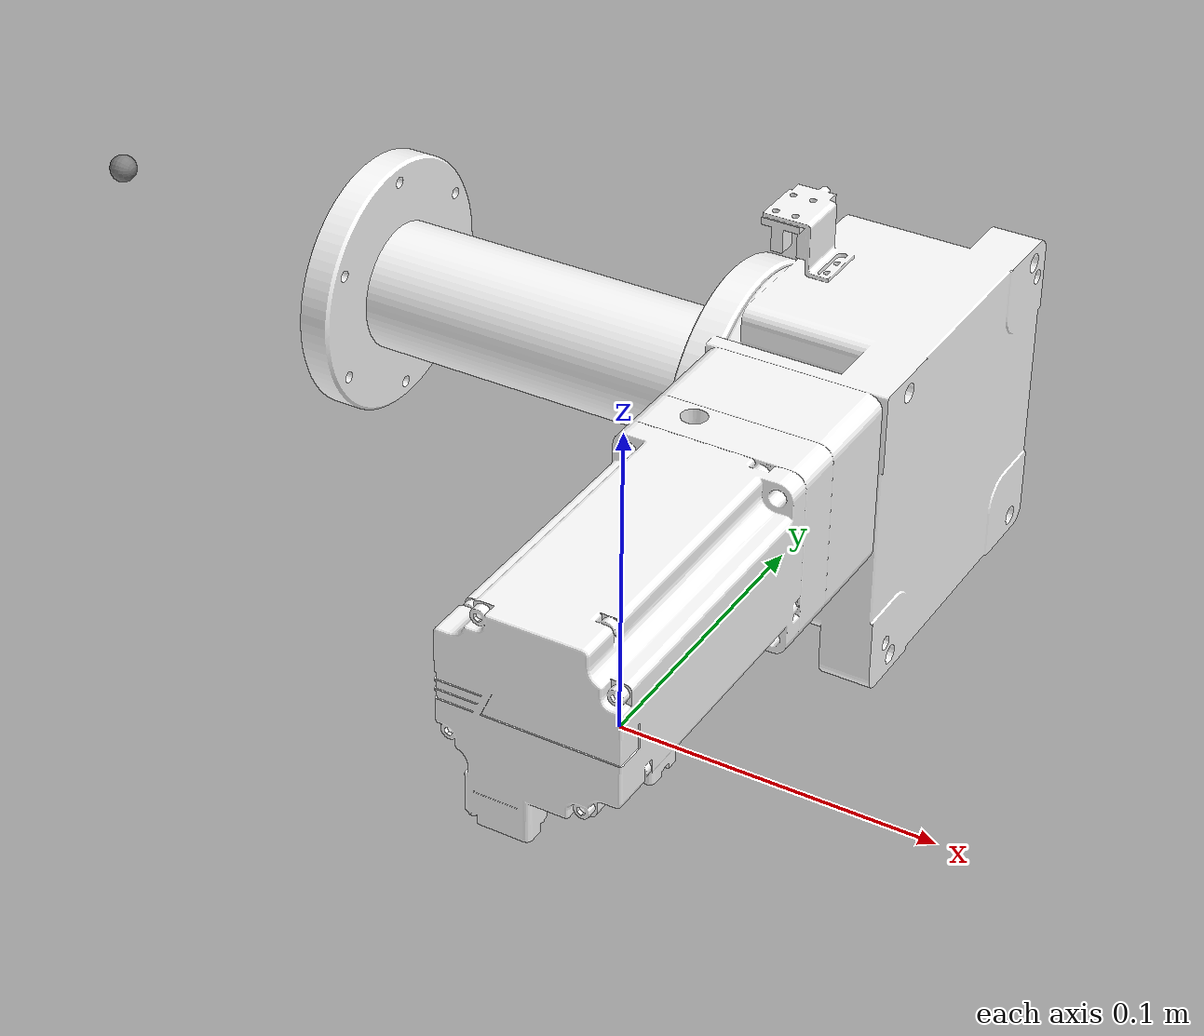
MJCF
<mujoco model="stage">
	<compiler angle="radian" strippath="true" autolimits="true" inertiafromgeom="true" />
	<include file="../common/default.xml" />
    <asset>
        <mesh name="stage_base" file="../assets/stage_base.stl" scale="0.001 0.001 0.001" />
        <mesh name="stage_axis" file="../assets/stage_axis.stl" scale="0.001 0.001 0.001" />
    </asset>
	<worldbody>

	<body name="stage/base">
		<geom name="stage/base" type="mesh" mesh="stage_base" pos="0 0 0" euler="0 0 0" class="visual"/>
		<inertial mass="10.1934626941949" pos="-0.006055673232456789 0.1156426328216132 0.01728651720170607" fullinertia="0.06643149011192773 0.01258380628891765 0.06300817000895997 0.0019355361989908156 -0.0002743789213502296 0.007765215958998828" />
		<body name="stage/axis" pos="0.0 0.15970000000001808 0.17609999999999487" euler="-1.5707963267948966 1.514612938024344e-28 5.777323064393413e-14">
			<joint name="stage/joint"  axis="-1 0 0" pos="-0.05539991076596271 0.16789992849250493 0.008199999999990005" />
			<geom name="stage/axis" type="mesh" mesh="stage_axis" pos="0 0 0" euler="0 0 0" class="collision"/>
			<inertial mass="2.3097812081000826" pos="-0.13926555560133777 0.1679000000000059 0.008199999999980874" fullinertia="0.0010901588387390434 0.005210702532227884 0.005213906461695833 1.5477716741279997e-16 -4.280820183588932e-16 -9.248947713987037e-07" />
			<site name="stage/attachment_site"  pos="-0.3 0.15 0" quat="0 -1.414 0 1.414" />

		</body>
	</body>

	</worldbody>
	<actuator>
		<position joint="stage/joint" name="stage/joint" kp="5000" kv="140" ctrlrange="-6.28 6.28" forcerange="-1000 1000" />
	</actuator>
</mujoco>

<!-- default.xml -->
<mujoco>
    <default>

        <default class="ur5e">
            <material specular="0.5" shininess="0.25"/>
            <joint axis="0 1 0" range="-6.28319 6.28319" armature="0.1"/>
            <general gaintype="fixed" biastype="affine" ctrlrange="-6.2831 6.2831" gainprm="2000" biasprm="0 -2000 -200" forcerange="-150 150"/>
            <site size="0.001" rgba="0.5 0.5 0.5 0.3" group="4"/>
        </default>

        <default class="visual">
            <geom type="mesh" contype="0" conaffinity="0" group="2" rgba="1 1 1 1"/>
        </default>

        <default class="collision">
            <geom  type="mesh" contype="1" conaffinity="1" group="2" rgba="1 1 1 1"/>
        </default>
    </default>
</mujoco>
